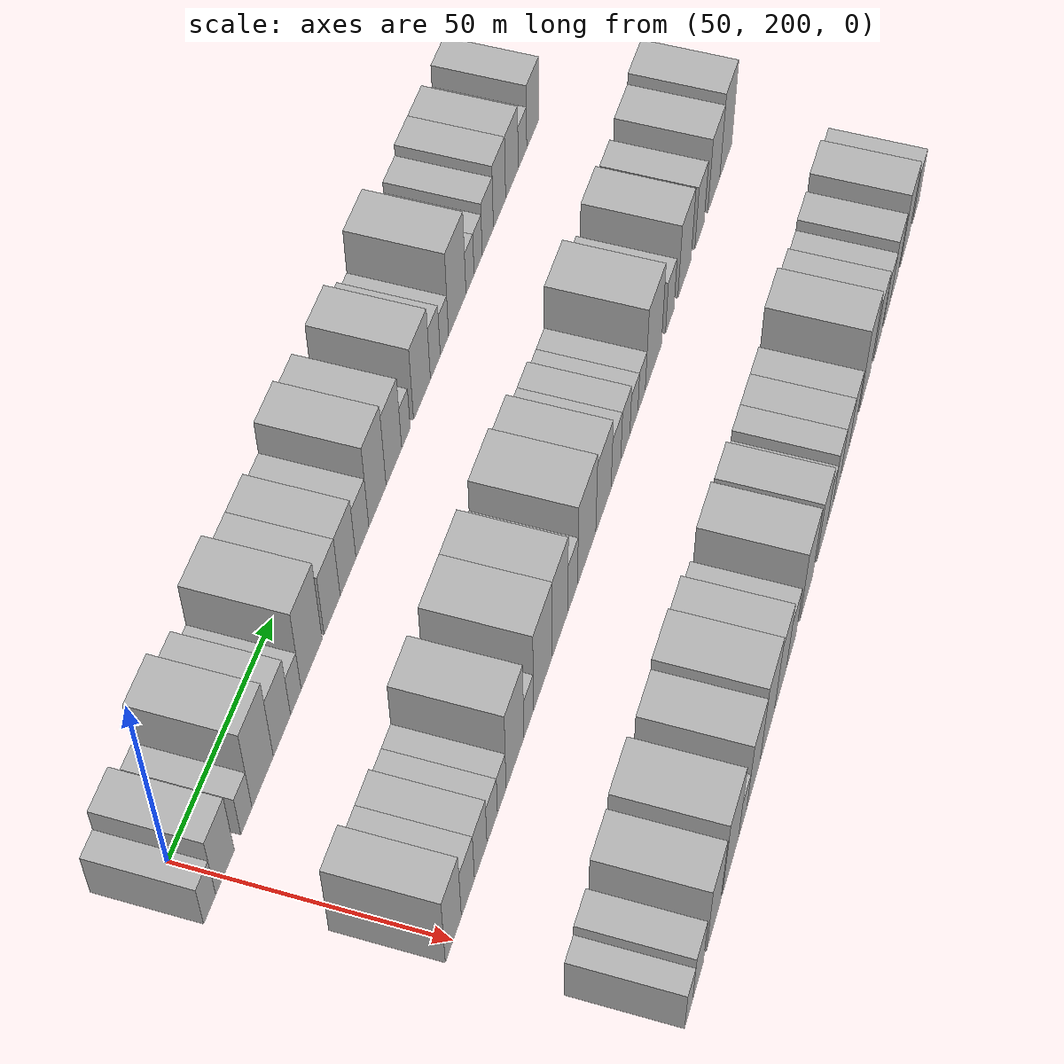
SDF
<sdf version="1.6">
 <world name="default">
  <model name="building_67">
   <static>1</static>
   <pose>50.0000 193.8219 0 0.000000 0.000000 0.000000</pose>
   <link name="link">
    <pose>0 0 6.00 0 0 0</pose>
    <collision name="collision"><geometry><box><size>20.0000 5.4691 12.0000</size></box></geometry></collision>
    <visual name="visual">
     <cast_shadows>0</cast_shadows>
     <geometry><box><size>20.0000 5.4691 12.0000</size></box></geometry>
     <material>
      <script>
       <uri>model://HANNAS_wall/materials/scripts</uri>
       <uri>model://HANNAS_wall/materials/textures</uri>
       <name>vrc/HANNAS_wall</name>
      </script>
     </material>
    </visual>
   </link>
  </model>
  <model name="building_68">
   <static>1</static>
   <pose>50.0000 200.8440 0 0.000000 0.000000 0.000000</pose>
   <link name="link">
    <pose>0 0 9.00 0 0 0</pose>
    <collision name="collision"><geometry><box><size>20.0000 8.5750 18.0000</size></box></geometry></collision>
    <visual name="visual">
     <cast_shadows>0</cast_shadows>
     <geometry><box><size>20.0000 8.5750 18.0000</size></box></geometry>
     <material>
      <script>
       <uri>model://HANNAS_wall/materials/scripts</uri>
       <uri>model://HANNAS_wall/materials/textures</uri>
       <name>vrc/HANNAS_wall</name>
      </script>
     </material>
    </visual>
   </link>
  </model>
  <model name="building_69">
   <static>1</static>
   <pose>50.0000 210.7933 0 0.000000 0.000000 0.000000</pose>
   <link name="link">
    <pose>0 0 6.00 0 0 0</pose>
    <collision name="collision"><geometry><box><size>20.0000 5.3235 12.0000</size></box></geometry></collision>
    <visual name="visual">
     <cast_shadows>0</cast_shadows>
     <geometry><box><size>20.0000 5.3235 12.0000</size></box></geometry>
     <material>
      <script>
       <uri>model://HANNAS_wall/materials/scripts</uri>
       <uri>model://HANNAS_wall/materials/textures</uri>
       <name>vrc/HANNAS_wall</name>
      </script>
     </material>
    </visual>
   </link>
  </model>
  <model name="building_70">
   <static>1</static>
   <pose>50.0000 218.5994 0 0.000000 0.000000 0.000000</pose>
   <link name="link">
    <pose>0 0 12.00 0 0 0</pose>
    <collision name="collision"><geometry><box><size>20.0000 10.2888 24.0000</size></box></geometry></collision>
    <visual name="visual">
     <cast_shadows>0</cast_shadows>
     <geometry><box><size>20.0000 10.2888 24.0000</size></box></geometry>
     <material>
      <script>
       <uri>model://HANNAS_wall/materials/scripts</uri>
       <uri>model://HANNAS_wall/materials/textures</uri>
       <name>vrc/HANNAS_wall</name>
      </script>
     </material>
    </visual>
   </link>
  </model>
  <model name="building_71">
   <static>1</static>
   <pose>50.0000 228.0188 0 0.000000 0.000000 0.000000</pose>
   <link name="link">
    <pose>0 0 9.00 0 0 0</pose>
    <collision name="collision"><geometry><box><size>20.0000 8.5498 18.0000</size></box></geometry></collision>
    <visual name="visual">
     <cast_shadows>0</cast_shadows>
     <geometry><box><size>20.0000 8.5498 18.0000</size></box></geometry>
     <material>
      <script>
       <uri>model://HANNAS_wall/materials/scripts</uri>
       <uri>model://HANNAS_wall/materials/textures</uri>
       <name>vrc/HANNAS_wall</name>
      </script>
     </material>
    </visual>
   </link>
  </model>
  <model name="building_72">
   <static>1</static>
   <pose>50.0000 234.9757 0 0.000000 0.000000 0.000000</pose>
   <link name="link">
    <pose>0 0 6.00 0 0 0</pose>
    <collision name="collision"><geometry><box><size>20.0000 5.3641 12.0000</size></box></geometry></collision>
    <visual name="visual">
     <cast_shadows>0</cast_shadows>
     <geometry><box><size>20.0000 5.3641 12.0000</size></box></geometry>
     <material>
      <script>
       <uri>model://HANNAS_wall/materials/scripts</uri>
       <uri>model://HANNAS_wall/materials/textures</uri>
       <name>vrc/HANNAS_wall</name>
      </script>
     </material>
    </visual>
   </link>
  </model>
  <model name="building_73">
   <static>1</static>
   <pose>50.0000 243.0597 0 0.000000 0.000000 0.000000</pose>
   <link name="link">
    <pose>0 0 12.00 0 0 0</pose>
    <collision name="collision"><geometry><box><size>20.0000 10.8039 24.0000</size></box></geometry></collision>
    <visual name="visual">
     <cast_shadows>0</cast_shadows>
     <geometry><box><size>20.0000 10.8039 24.0000</size></box></geometry>
     <material>
      <script>
       <uri>model://HANNAS_wall/materials/scripts</uri>
       <uri>model://HANNAS_wall/materials/textures</uri>
       <name>vrc/HANNAS_wall</name>
      </script>
     </material>
    </visual>
   </link>
  </model>
  <model name="building_74">
   <static>1</static>
   <pose>50.0000 253.7331 0 0.000000 0.000000 0.000000</pose>
   <link name="link">
    <pose>0 0 9.00 0 0 0</pose>
    <collision name="collision"><geometry><box><size>20.0000 8.5429 18.0000</size></box></geometry></collision>
    <visual name="visual">
     <cast_shadows>0</cast_shadows>
     <geometry><box><size>20.0000 8.5429 18.0000</size></box></geometry>
     <material>
      <script>
       <uri>model://HANNAS_wall/materials/scripts</uri>
       <uri>model://HANNAS_wall/materials/textures</uri>
       <name>vrc/HANNAS_wall</name>
      </script>
     </material>
    </visual>
   </link>
  </model>
  <model name="building_75">
   <static>1</static>
   <pose>50.0000 262.2793 0 0.000000 0.000000 0.000000</pose>
   <link name="link">
    <pose>0 0 9.00 0 0 0</pose>
    <collision name="collision"><geometry><box><size>20.0000 8.5495 18.0000</size></box></geometry></collision>
    <visual name="visual">
     <cast_shadows>0</cast_shadows>
     <geometry><box><size>20.0000 8.5495 18.0000</size></box></geometry>
     <material>
      <script>
       <uri>model://HANNAS_wall/materials/scripts</uri>
       <uri>model://HANNAS_wall/materials/textures</uri>
       <name>vrc/HANNAS_wall</name>
      </script>
     </material>
    </visual>
   </link>
  </model>
  <model name="building_76">
   <static>1</static>
   <pose>50.0000 270.1269 0 0.000000 0.000000 0.000000</pose>
   <link name="link">
    <pose>0 0 7.50 0 0 0</pose>
    <collision name="collision"><geometry><box><size>20.0000 7.1458 15.0000</size></box></geometry></collision>
    <visual name="visual">
     <cast_shadows>0</cast_shadows>
     <geometry><box><size>20.0000 7.1458 15.0000</size></box></geometry>
     <material>
      <script>
       <uri>model://HANNAS_wall/materials/scripts</uri>
       <uri>model://HANNAS_wall/materials/textures</uri>
       <name>vrc/HANNAS_wall</name>
      </script>
     </material>
    </visual>
   </link>
  </model>
  <model name="building_77">
   <static>1</static>
   <pose>50.0000 278.5636 0 0.000000 0.000000 0.000000</pose>
   <link name="link">
    <pose>0 0 12.00 0 0 0</pose>
    <collision name="collision"><geometry><box><size>20.0000 9.7276 24.0000</size></box></geometry></collision>
    <visual name="visual">
     <cast_shadows>0</cast_shadows>
     <geometry><box><size>20.0000 9.7276 24.0000</size></box></geometry>
     <material>
      <script>
       <uri>model://HANNAS_wall/materials/scripts</uri>
       <uri>model://HANNAS_wall/materials/textures</uri>
       <name>vrc/HANNAS_wall</name>
      </script>
     </material>
    </visual>
   </link>
  </model>
  <model name="building_78">
   <static>1</static>
   <pose>50.0000 287.9281 0 0.000000 0.000000 0.000000</pose>
   <link name="link">
    <pose>0 0 10.50 0 0 0</pose>
    <collision name="collision"><geometry><box><size>20.0000 9.0013 21.0000</size></box></geometry></collision>
    <visual name="visual">
     <cast_shadows>0</cast_shadows>
     <geometry><box><size>20.0000 9.0013 21.0000</size></box></geometry>
     <material>
      <script>
       <uri>model://HANNAS_wall/materials/scripts</uri>
       <uri>model://HANNAS_wall/materials/textures</uri>
       <name>vrc/HANNAS_wall</name>
      </script>
     </material>
    </visual>
   </link>
  </model>
  <model name="building_79">
   <static>1</static>
   <pose>50.0000 294.9250 0 0.000000 0.000000 0.000000</pose>
   <link name="link">
    <pose>0 0 6.00 0 0 0</pose>
    <collision name="collision"><geometry><box><size>20.0000 4.9925 12.0000</size></box></geometry></collision>
    <visual name="visual">
     <cast_shadows>0</cast_shadows>
     <geometry><box><size>20.0000 4.9925 12.0000</size></box></geometry>
     <material>
      <script>
       <uri>model://HANNAS_wall/materials/scripts</uri>
       <uri>model://HANNAS_wall/materials/textures</uri>
       <name>vrc/HANNAS_wall</name>
      </script>
     </material>
    </visual>
   </link>
  </model>
  <model name="building_80">
   <static>1</static>
   <pose>50.0000 304.4848 0 0.000000 0.000000 0.000000</pose>
   <link name="link">
    <pose>0 0 10.50 0 0 0</pose>
    <collision name="collision"><geometry><box><size>20.0000 10.1271 21.0000</size></box></geometry></collision>
    <visual name="visual">
     <cast_shadows>0</cast_shadows>
     <geometry><box><size>20.0000 10.1271 21.0000</size></box></geometry>
     <material>
      <script>
       <uri>model://HANNAS_wall/materials/scripts</uri>
       <uri>model://HANNAS_wall/materials/textures</uri>
       <name>vrc/HANNAS_wall</name>
      </script>
     </material>
    </visual>
   </link>
  </model>
  <model name="building_81">
   <static>1</static>
   <pose>50.0000 312.5712 0 0.000000 0.000000 0.000000</pose>
   <link name="link">
    <pose>0 0 7.50 0 0 0</pose>
    <collision name="collision"><geometry><box><size>20.0000 6.0456 15.0000</size></box></geometry></collision>
    <visual name="visual">
     <cast_shadows>0</cast_shadows>
     <geometry><box><size>20.0000 6.0456 15.0000</size></box></geometry>
     <material>
      <script>
       <uri>model://HANNAS_wall/materials/scripts</uri>
       <uri>model://HANNAS_wall/materials/textures</uri>
       <name>vrc/HANNAS_wall</name>
      </script>
     </material>
    </visual>
   </link>
  </model>
  <model name="building_82">
   <static>1</static>
   <pose>50.0000 318.1737 0 0.000000 0.000000 0.000000</pose>
   <link name="link">
    <pose>0 0 6.00 0 0 0</pose>
    <collision name="collision"><geometry><box><size>20.0000 5.1594 12.0000</size></box></geometry></collision>
    <visual name="visual">
     <cast_shadows>0</cast_shadows>
     <geometry><box><size>20.0000 5.1594 12.0000</size></box></geometry>
     <material>
      <script>
       <uri>model://HANNAS_wall/materials/scripts</uri>
       <uri>model://HANNAS_wall/materials/textures</uri>
       <name>vrc/HANNAS_wall</name>
      </script>
     </material>
    </visual>
   </link>
  </model>
  <model name="building_83">
   <static>1</static>
   <pose>50.0000 326.2664 0 0.000000 0.000000 0.000000</pose>
   <link name="link">
    <pose>0 0 12.00 0 0 0</pose>
    <collision name="collision"><geometry><box><size>20.0000 11.0261 24.0000</size></box></geometry></collision>
    <visual name="visual">
     <cast_shadows>0</cast_shadows>
     <geometry><box><size>20.0000 11.0261 24.0000</size></box></geometry>
     <material>
      <script>
       <uri>model://HANNAS_wall/materials/scripts</uri>
       <uri>model://HANNAS_wall/materials/textures</uri>
       <name>vrc/HANNAS_wall</name>
      </script>
     </material>
    </visual>
   </link>
  </model>
  <model name="building_84">
   <static>1</static>
   <pose>50.0000 334.3921 0 0.000000 0.000000 0.000000</pose>
   <link name="link">
    <pose>0 0 6.00 0 0 0</pose>
    <collision name="collision"><geometry><box><size>20.0000 5.2254 12.0000</size></box></geometry></collision>
    <visual name="visual">
     <cast_shadows>0</cast_shadows>
     <geometry><box><size>20.0000 5.2254 12.0000</size></box></geometry>
     <material>
      <script>
       <uri>model://HANNAS_wall/materials/scripts</uri>
       <uri>model://HANNAS_wall/materials/textures</uri>
       <name>vrc/HANNAS_wall</name>
      </script>
     </material>
    </visual>
   </link>
  </model>
  <model name="building_85">
   <static>1</static>
   <pose>50.0000 339.6624 0 0.000000 0.000000 0.000000</pose>
   <link name="link">
    <pose>0 0 6.00 0 0 0</pose>
    <collision name="collision"><geometry><box><size>20.0000 5.3151 12.0000</size></box></geometry></collision>
    <visual name="visual">
     <cast_shadows>0</cast_shadows>
     <geometry><box><size>20.0000 5.3151 12.0000</size></box></geometry>
     <material>
      <script>
       <uri>model://HANNAS_wall/materials/scripts</uri>
       <uri>model://HANNAS_wall/materials/textures</uri>
       <name>vrc/HANNAS_wall</name>
      </script>
     </material>
    </visual>
   </link>
  </model>
  <model name="building_86">
   <static>1</static>
   <pose>50.0000 346.0341 0 0.000000 0.000000 0.000000</pose>
   <link name="link">
    <pose>0 0 7.50 0 0 0</pose>
    <collision name="collision"><geometry><box><size>20.0000 7.4283 15.0000</size></box></geometry></collision>
    <visual name="visual">
     <cast_shadows>0</cast_shadows>
     <geometry><box><size>20.0000 7.4283 15.0000</size></box></geometry>
     <material>
      <script>
       <uri>model://HANNAS_wall/materials/scripts</uri>
       <uri>model://HANNAS_wall/materials/textures</uri>
       <name>vrc/HANNAS_wall</name>
      </script>
     </material>
    </visual>
   </link>
  </model>
  <model name="building_87">
   <static>1</static>
   <pose>50.0000 353.8838 0 0.000000 0.000000 0.000000</pose>
   <link name="link">
    <pose>0 0 9.00 0 0 0</pose>
    <collision name="collision"><geometry><box><size>20.0000 8.2711 18.0000</size></box></geometry></collision>
    <visual name="visual">
     <cast_shadows>0</cast_shadows>
     <geometry><box><size>20.0000 8.2711 18.0000</size></box></geometry>
     <material>
      <script>
       <uri>model://HANNAS_wall/materials/scripts</uri>
       <uri>model://HANNAS_wall/materials/textures</uri>
       <name>vrc/HANNAS_wall</name>
      </script>
     </material>
    </visual>
   </link>
  </model>
  <model name="building_88">
   <static>1</static>
   <pose>50.0000 362.3685 0 0.000000 0.000000 0.000000</pose>
   <link name="link">
    <pose>0 0 9.00 0 0 0</pose>
    <collision name="collision"><geometry><box><size>20.0000 8.6984 18.0000</size></box></geometry></collision>
    <visual name="visual">
     <cast_shadows>0</cast_shadows>
     <geometry><box><size>20.0000 8.6984 18.0000</size></box></geometry>
     <material>
      <script>
       <uri>model://HANNAS_wall/materials/scripts</uri>
       <uri>model://HANNAS_wall/materials/textures</uri>
       <name>vrc/HANNAS_wall</name>
      </script>
     </material>
    </visual>
   </link>
  </model>
  <model name="building_89">
   <static>1</static>
   <pose>50.0000 369.6796 0 0.000000 0.000000 0.000000</pose>
   <link name="link">
    <pose>0 0 6.00 0 0 0</pose>
    <collision name="collision"><geometry><box><size>20.0000 5.9237 12.0000</size></box></geometry></collision>
    <visual name="visual">
     <cast_shadows>0</cast_shadows>
     <geometry><box><size>20.0000 5.9237 12.0000</size></box></geometry>
     <material>
      <script>
       <uri>model://HANNAS_wall/materials/scripts</uri>
       <uri>model://HANNAS_wall/materials/textures</uri>
       <name>vrc/HANNAS_wall</name>
      </script>
     </material>
    </visual>
   </link>
  </model>
  <model name="building_90">
   <static>1</static>
   <pose>50.0000 376.9354 0 0.000000 0.000000 0.000000</pose>
   <link name="link">
    <pose>0 0 9.00 0 0 0</pose>
    <collision name="collision"><geometry><box><size>20.0000 8.5879 18.0000</size></box></geometry></collision>
    <visual name="visual">
     <cast_shadows>0</cast_shadows>
     <geometry><box><size>20.0000 8.5879 18.0000</size></box></geometry>
     <material>
      <script>
       <uri>model://HANNAS_wall/materials/scripts</uri>
       <uri>model://HANNAS_wall/materials/textures</uri>
       <name>vrc/HANNAS_wall</name>
      </script>
     </material>
    </visual>
   </link>
  </model>
  <model name="building_163">
   <static>1</static>
   <pose>90.0000 200.1441 0 0.000000 0.000000 0.000000</pose>
   <link name="link">
    <pose>0 0 10.50 0 0 0</pose>
    <collision name="collision"><geometry><box><size>20.0000 8.4738 21.0000</size></box></geometry></collision>
    <visual name="visual">
     <cast_shadows>0</cast_shadows>
     <geometry><box><size>20.0000 8.4738 21.0000</size></box></geometry>
     <material>
      <script>
       <uri>model://HANNAS_wall/materials/scripts</uri>
       <uri>model://HANNAS_wall/materials/textures</uri>
       <name>vrc/HANNAS_wall</name>
      </script>
     </material>
    </visual>
   </link>
  </model>
  <model name="building_164">
   <static>1</static>
   <pose>90.0000 207.9223 0 0.000000 0.000000 0.000000</pose>
   <link name="link">
    <pose>0 0 7.50 0 0 0</pose>
    <collision name="collision"><geometry><box><size>20.0000 7.0825 15.0000</size></box></geometry></collision>
    <visual name="visual">
     <cast_shadows>0</cast_shadows>
     <geometry><box><size>20.0000 7.0825 15.0000</size></box></geometry>
     <material>
      <script>
       <uri>model://HANNAS_wall/materials/scripts</uri>
       <uri>model://HANNAS_wall/materials/textures</uri>
       <name>vrc/HANNAS_wall</name>
      </script>
     </material>
    </visual>
   </link>
  </model>
  <model name="building_165">
   <static>1</static>
   <pose>90.0000 214.9067 0 0.000000 0.000000 0.000000</pose>
   <link name="link">
    <pose>0 0 7.50 0 0 0</pose>
    <collision name="collision"><geometry><box><size>20.0000 6.8863 15.0000</size></box></geometry></collision>
    <visual name="visual">
     <cast_shadows>0</cast_shadows>
     <geometry><box><size>20.0000 6.8863 15.0000</size></box></geometry>
     <material>
      <script>
       <uri>model://HANNAS_wall/materials/scripts</uri>
       <uri>model://HANNAS_wall/materials/textures</uri>
       <name>vrc/HANNAS_wall</name>
      </script>
     </material>
    </visual>
   </link>
  </model>
  <model name="building_166">
   <static>1</static>
   <pose>90.0000 221.2962 0 0.000000 0.000000 0.000000</pose>
   <link name="link">
    <pose>0 0 6.00 0 0 0</pose>
    <collision name="collision"><geometry><box><size>20.0000 5.8927 12.0000</size></box></geometry></collision>
    <visual name="visual">
     <cast_shadows>0</cast_shadows>
     <geometry><box><size>20.0000 5.8927 12.0000</size></box></geometry>
     <material>
      <script>
       <uri>model://HANNAS_wall/materials/scripts</uri>
       <uri>model://HANNAS_wall/materials/textures</uri>
       <name>vrc/HANNAS_wall</name>
      </script>
     </material>
    </visual>
   </link>
  </model>
  <model name="building_167">
   <static>1</static>
   <pose>90.0000 226.6902 0 0.000000 0.000000 0.000000</pose>
   <link name="link">
    <pose>0 0 6.00 0 0 0</pose>
    <collision name="collision"><geometry><box><size>20.0000 4.8953 12.0000</size></box></geometry></collision>
    <visual name="visual">
     <cast_shadows>0</cast_shadows>
     <geometry><box><size>20.0000 4.8953 12.0000</size></box></geometry>
     <material>
      <script>
       <uri>model://HANNAS_wall/materials/scripts</uri>
       <uri>model://HANNAS_wall/materials/textures</uri>
       <name>vrc/HANNAS_wall</name>
      </script>
     </material>
    </visual>
   </link>
  </model>
  <model name="building_168">
   <static>1</static>
   <pose>90.0000 234.2733 0 0.000000 0.000000 0.000000</pose>
   <link name="link">
    <pose>0 0 12.00 0 0 0</pose>
    <collision name="collision"><geometry><box><size>20.0000 10.2711 24.0000</size></box></geometry></collision>
    <visual name="visual">
     <cast_shadows>0</cast_shadows>
     <geometry><box><size>20.0000 10.2711 24.0000</size></box></geometry>
     <material>
      <script>
       <uri>model://HANNAS_wall/materials/scripts</uri>
       <uri>model://HANNAS_wall/materials/textures</uri>
       <name>vrc/HANNAS_wall</name>
      </script>
     </material>
    </visual>
   </link>
  </model>
  <model name="building_169">
   <static>1</static>
   <pose>90.0000 242.2615 0 0.000000 0.000000 0.000000</pose>
   <link name="link">
    <pose>0 0 6.00 0 0 0</pose>
    <collision name="collision"><geometry><box><size>20.0000 5.7052 12.0000</size></box></geometry></collision>
    <visual name="visual">
     <cast_shadows>0</cast_shadows>
     <geometry><box><size>20.0000 5.7052 12.0000</size></box></geometry>
     <material>
      <script>
       <uri>model://HANNAS_wall/materials/scripts</uri>
       <uri>model://HANNAS_wall/materials/textures</uri>
       <name>vrc/HANNAS_wall</name>
      </script>
     </material>
    </visual>
   </link>
  </model>
  <model name="building_170">
   <static>1</static>
   <pose>90.0000 250.7842 0 0.000000 0.000000 0.000000</pose>
   <link name="link">
    <pose>0 0 12.00 0 0 0</pose>
    <collision name="collision"><geometry><box><size>20.0000 11.3401 24.0000</size></box></geometry></collision>
    <visual name="visual">
     <cast_shadows>0</cast_shadows>
     <geometry><box><size>20.0000 11.3401 24.0000</size></box></geometry>
     <material>
      <script>
       <uri>model://HANNAS_wall/materials/scripts</uri>
       <uri>model://HANNAS_wall/materials/textures</uri>
       <name>vrc/HANNAS_wall</name>
      </script>
     </material>
    </visual>
   </link>
  </model>
  <model name="building_171">
   <static>1</static>
   <pose>90.0000 261.2702 0 0.000000 0.000000 0.000000</pose>
   <link name="link">
    <pose>0 0 12.00 0 0 0</pose>
    <collision name="collision"><geometry><box><size>20.0000 9.6320 24.0000</size></box></geometry></collision>
    <visual name="visual">
     <cast_shadows>0</cast_shadows>
     <geometry><box><size>20.0000 9.6320 24.0000</size></box></geometry>
     <material>
      <script>
       <uri>model://HANNAS_wall/materials/scripts</uri>
       <uri>model://HANNAS_wall/materials/textures</uri>
       <name>vrc/HANNAS_wall</name>
      </script>
     </material>
    </visual>
   </link>
  </model>
  <model name="building_172">
   <static>1</static>
   <pose>90.0000 269.2439 0 0.000000 0.000000 0.000000</pose>
   <link name="link">
    <pose>0 0 7.50 0 0 0</pose>
    <collision name="collision"><geometry><box><size>20.0000 6.3154 15.0000</size></box></geometry></collision>
    <visual name="visual">
     <cast_shadows>0</cast_shadows>
     <geometry><box><size>20.0000 6.3154 15.0000</size></box></geometry>
     <material>
      <script>
       <uri>model://HANNAS_wall/materials/scripts</uri>
       <uri>model://HANNAS_wall/materials/textures</uri>
       <name>vrc/HANNAS_wall</name>
      </script>
     </material>
    </visual>
   </link>
  </model>
  <model name="building_173">
   <static>1</static>
   <pose>90.0000 278.3806 0 0.000000 0.000000 0.000000</pose>
   <link name="link">
    <pose>0 0 12.00 0 0 0</pose>
    <collision name="collision"><geometry><box><size>20.0000 11.9581 24.0000</size></box></geometry></collision>
    <visual name="visual">
     <cast_shadows>0</cast_shadows>
     <geometry><box><size>20.0000 11.9581 24.0000</size></box></geometry>
     <material>
      <script>
       <uri>model://HANNAS_wall/materials/scripts</uri>
       <uri>model://HANNAS_wall/materials/textures</uri>
       <name>vrc/HANNAS_wall</name>
      </script>
     </material>
    </visual>
   </link>
  </model>
  <model name="building_174">
   <static>1</static>
   <pose>90.0000 289.4900 0 0.000000 0.000000 0.000000</pose>
   <link name="link">
    <pose>0 0 10.50 0 0 0</pose>
    <collision name="collision"><geometry><box><size>20.0000 10.2608 21.0000</size></box></geometry></collision>
    <visual name="visual">
     <cast_shadows>0</cast_shadows>
     <geometry><box><size>20.0000 10.2608 21.0000</size></box></geometry>
     <material>
      <script>
       <uri>model://HANNAS_wall/materials/scripts</uri>
       <uri>model://HANNAS_wall/materials/textures</uri>
       <name>vrc/HANNAS_wall</name>
      </script>
     </material>
    </visual>
   </link>
  </model>
  <model name="building_175">
   <static>1</static>
   <pose>90.0000 297.9205 0 0.000000 0.000000 0.000000</pose>
   <link name="link">
    <pose>0 0 7.50 0 0 0</pose>
    <collision name="collision"><geometry><box><size>20.0000 6.6002 15.0000</size></box></geometry></collision>
    <visual name="visual">
     <cast_shadows>0</cast_shadows>
     <geometry><box><size>20.0000 6.6002 15.0000</size></box></geometry>
     <material>
      <script>
       <uri>model://HANNAS_wall/materials/scripts</uri>
       <uri>model://HANNAS_wall/materials/textures</uri>
       <name>vrc/HANNAS_wall</name>
      </script>
     </material>
    </visual>
   </link>
  </model>
  <model name="building_176">
   <static>1</static>
   <pose>90.0000 304.3906 0 0.000000 0.000000 0.000000</pose>
   <link name="link">
    <pose>0 0 7.50 0 0 0</pose>
    <collision name="collision"><geometry><box><size>20.0000 6.3400 15.0000</size></box></geometry></collision>
    <visual name="visual">
     <cast_shadows>0</cast_shadows>
     <geometry><box><size>20.0000 6.3400 15.0000</size></box></geometry>
     <material>
      <script>
       <uri>model://HANNAS_wall/materials/scripts</uri>
       <uri>model://HANNAS_wall/materials/textures</uri>
       <name>vrc/HANNAS_wall</name>
      </script>
     </material>
    </visual>
   </link>
  </model>
  <model name="building_177">
   <static>1</static>
   <pose>90.0000 310.3826 0 0.000000 0.000000 0.000000</pose>
   <link name="link">
    <pose>0 0 6.00 0 0 0</pose>
    <collision name="collision"><geometry><box><size>20.0000 5.6441 12.0000</size></box></geometry></collision>
    <visual name="visual">
     <cast_shadows>0</cast_shadows>
     <geometry><box><size>20.0000 5.6441 12.0000</size></box></geometry>
     <material>
      <script>
       <uri>model://HANNAS_wall/materials/scripts</uri>
       <uri>model://HANNAS_wall/materials/textures</uri>
       <name>vrc/HANNAS_wall</name>
      </script>
     </material>
    </visual>
   </link>
  </model>
  <model name="building_178">
   <static>1</static>
   <pose>90.0000 315.8562 0 0.000000 0.000000 0.000000</pose>
   <link name="link">
    <pose>0 0 6.00 0 0 0</pose>
    <collision name="collision"><geometry><box><size>20.0000 5.3030 12.0000</size></box></geometry></collision>
    <visual name="visual">
     <cast_shadows>0</cast_shadows>
     <geometry><box><size>20.0000 5.3030 12.0000</size></box></geometry>
     <material>
      <script>
       <uri>model://HANNAS_wall/materials/scripts</uri>
       <uri>model://HANNAS_wall/materials/textures</uri>
       <name>vrc/HANNAS_wall</name>
      </script>
     </material>
    </visual>
   </link>
  </model>
  <model name="building_179">
   <static>1</static>
   <pose>90.0000 324.4336 0 0.000000 0.000000 0.000000</pose>
   <link name="link">
    <pose>0 0 12.00 0 0 0</pose>
    <collision name="collision"><geometry><box><size>20.0000 11.8517 24.0000</size></box></geometry></collision>
    <visual name="visual">
     <cast_shadows>0</cast_shadows>
     <geometry><box><size>20.0000 11.8517 24.0000</size></box></geometry>
     <material>
      <script>
       <uri>model://HANNAS_wall/materials/scripts</uri>
       <uri>model://HANNAS_wall/materials/textures</uri>
       <name>vrc/HANNAS_wall</name>
      </script>
     </material>
    </visual>
   </link>
  </model>
  <model name="building_180">
   <static>1</static>
   <pose>90.0000 336.5425 0 0.000000 0.000000 0.000000</pose>
   <link name="link">
    <pose>0 0 7.50 0 0 0</pose>
    <collision name="collision"><geometry><box><size>20.0000 6.3661 15.0000</size></box></geometry></collision>
    <visual name="visual">
     <cast_shadows>0</cast_shadows>
     <geometry><box><size>20.0000 6.3661 15.0000</size></box></geometry>
     <material>
      <script>
       <uri>model://HANNAS_wall/materials/scripts</uri>
       <uri>model://HANNAS_wall/materials/textures</uri>
       <name>vrc/HANNAS_wall</name>
      </script>
     </material>
    </visual>
   </link>
  </model>
  <model name="building_181">
   <static>1</static>
   <pose>90.0000 347.7879 0 0.000000 0.000000 0.000000</pose>
   <link name="link">
    <pose>0 0 10.50 0 0 0</pose>
    <collision name="collision"><geometry><box><size>20.0000 10.1249 21.0000</size></box></geometry></collision>
    <visual name="visual">
     <cast_shadows>0</cast_shadows>
     <geometry><box><size>20.0000 10.1249 21.0000</size></box></geometry>
     <material>
      <script>
       <uri>model://HANNAS_wall/materials/scripts</uri>
       <uri>model://HANNAS_wall/materials/textures</uri>
       <name>vrc/HANNAS_wall</name>
      </script>
     </material>
    </visual>
   </link>
  </model>
  <model name="building_182">
   <static>1</static>
   <pose>90.0000 359.4985 0 0.000000 0.000000 0.000000</pose>
   <link name="link">
    <pose>0 0 9.00 0 0 0</pose>
    <collision name="collision"><geometry><box><size>20.0000 7.2963 18.0000</size></box></geometry></collision>
    <visual name="visual">
     <cast_shadows>0</cast_shadows>
     <geometry><box><size>20.0000 7.2963 18.0000</size></box></geometry>
     <material>
      <script>
       <uri>model://HANNAS_wall/materials/scripts</uri>
       <uri>model://HANNAS_wall/materials/textures</uri>
       <name>vrc/HANNAS_wall</name>
      </script>
     </material>
    </visual>
   </link>
  </model>
  <model name="building_183">
   <static>1</static>
   <pose>90.0000 371.0342 0 0.000000 0.000000 0.000000</pose>
   <link name="link">
    <pose>0 0 10.50 0 0 0</pose>
    <collision name="collision"><geometry><box><size>20.0000 9.7750 21.0000</size></box></geometry></collision>
    <visual name="visual">
     <cast_shadows>0</cast_shadows>
     <geometry><box><size>20.0000 9.7750 21.0000</size></box></geometry>
     <material>
      <script>
       <uri>model://HANNAS_wall/materials/scripts</uri>
       <uri>model://HANNAS_wall/materials/textures</uri>
       <name>vrc/HANNAS_wall</name>
      </script>
     </material>
    </visual>
   </link>
  </model>
  <model name="building_184">
   <static>1</static>
   <pose>90.0000 380.8709 0 0.000000 0.000000 0.000000</pose>
   <link name="link">
    <pose>0 0 12.00 0 0 0</pose>
    <collision name="collision"><geometry><box><size>20.0000 9.8983 24.0000</size></box></geometry></collision>
    <visual name="visual">
     <cast_shadows>0</cast_shadows>
     <geometry><box><size>20.0000 9.8983 24.0000</size></box></geometry>
     <material>
      <script>
       <uri>model://HANNAS_wall/materials/scripts</uri>
       <uri>model://HANNAS_wall/materials/textures</uri>
       <name>vrc/HANNAS_wall</name>
      </script>
     </material>
    </visual>
   </link>
  </model>
  <model name="building_247">
   <static>1</static>
   <pose>130.0000 198.5391 0 0.000000 0.000000 0.000000</pose>
   <link name="link">
    <pose>0 0 6.00 0 0 0</pose>
    <collision name="collision"><geometry><box><size>20.0000 5.0285 12.0000</size></box></geometry></collision>
    <visual name="visual">
     <cast_shadows>0</cast_shadows>
     <geometry><box><size>20.0000 5.0285 12.0000</size></box></geometry>
     <material>
      <script>
       <uri>model://HANNAS_wall/materials/scripts</uri>
       <uri>model://HANNAS_wall/materials/textures</uri>
       <name>vrc/HANNAS_wall</name>
      </script>
     </material>
    </visual>
   </link>
  </model>
  <model name="building_248">
   <static>1</static>
   <pose>130.0000 204.4806 0 0.000000 0.000000 0.000000</pose>
   <link name="link">
    <pose>0 0 7.50 0 0 0</pose>
    <collision name="collision"><geometry><box><size>20.0000 6.8544 15.0000</size></box></geometry></collision>
    <visual name="visual">
     <cast_shadows>0</cast_shadows>
     <geometry><box><size>20.0000 6.8544 15.0000</size></box></geometry>
     <material>
      <script>
       <uri>model://HANNAS_wall/materials/scripts</uri>
       <uri>model://HANNAS_wall/materials/textures</uri>
       <name>vrc/HANNAS_wall</name>
      </script>
     </material>
    </visual>
   </link>
  </model>
  <model name="building_249">
   <static>1</static>
   <pose>130.0000 214.6348 0 0.000000 0.000000 0.000000</pose>
   <link name="link">
    <pose>0 0 10.50 0 0 0</pose>
    <collision name="collision"><geometry><box><size>20.0000 9.4539 21.0000</size></box></geometry></collision>
    <visual name="visual">
     <cast_shadows>0</cast_shadows>
     <geometry><box><size>20.0000 9.4539 21.0000</size></box></geometry>
     <material>
      <script>
       <uri>model://HANNAS_wall/materials/scripts</uri>
       <uri>model://HANNAS_wall/materials/textures</uri>
       <name>vrc/HANNAS_wall</name>
      </script>
     </material>
    </visual>
   </link>
  </model>
  <model name="building_250">
   <static>1</static>
   <pose>130.0000 225.8465 0 0.000000 0.000000 0.000000</pose>
   <link name="link">
    <pose>0 0 12.00 0 0 0</pose>
    <collision name="collision"><geometry><box><size>20.0000 10.9697 24.0000</size></box></geometry></collision>
    <visual name="visual">
     <cast_shadows>0</cast_shadows>
     <geometry><box><size>20.0000 10.9697 24.0000</size></box></geometry>
     <material>
      <script>
       <uri>model://HANNAS_wall/materials/scripts</uri>
       <uri>model://HANNAS_wall/materials/textures</uri>
       <name>vrc/HANNAS_wall</name>
      </script>
     </material>
    </visual>
   </link>
  </model>
  <model name="building_251">
   <static>1</static>
   <pose>130.0000 234.1889 0 0.000000 0.000000 0.000000</pose>
   <link name="link">
    <pose>0 0 6.00 0 0 0</pose>
    <collision name="collision"><geometry><box><size>20.0000 5.7151 12.0000</size></box></geometry></collision>
    <visual name="visual">
     <cast_shadows>0</cast_shadows>
     <geometry><box><size>20.0000 5.7151 12.0000</size></box></geometry>
     <material>
      <script>
       <uri>model://HANNAS_wall/materials/scripts</uri>
       <uri>model://HANNAS_wall/materials/textures</uri>
       <name>vrc/HANNAS_wall</name>
      </script>
     </material>
    </visual>
   </link>
  </model>
  <model name="building_252">
   <static>1</static>
   <pose>130.0000 241.7749 0 0.000000 0.000000 0.000000</pose>
   <link name="link">
    <pose>0 0 10.50 0 0 0</pose>
    <collision name="collision"><geometry><box><size>20.0000 9.4567 21.0000</size></box></geometry></collision>
    <visual name="visual">
     <cast_shadows>0</cast_shadows>
     <geometry><box><size>20.0000 9.4567 21.0000</size></box></geometry>
     <material>
      <script>
       <uri>model://HANNAS_wall/materials/scripts</uri>
       <uri>model://HANNAS_wall/materials/textures</uri>
       <name>vrc/HANNAS_wall</name>
      </script>
     </material>
    </visual>
   </link>
  </model>
  <model name="building_253">
   <static>1</static>
   <pose>130.0000 251.7209 0 0.000000 0.000000 0.000000</pose>
   <link name="link">
    <pose>0 0 12.00 0 0 0</pose>
    <collision name="collision"><geometry><box><size>20.0000 10.4354 24.0000</size></box></geometry></collision>
    <visual name="visual">
     <cast_shadows>0</cast_shadows>
     <geometry><box><size>20.0000 10.4354 24.0000</size></box></geometry>
     <material>
      <script>
       <uri>model://HANNAS_wall/materials/scripts</uri>
       <uri>model://HANNAS_wall/materials/textures</uri>
       <name>vrc/HANNAS_wall</name>
      </script>
     </material>
    </visual>
   </link>
  </model>
  <model name="building_254">
   <static>1</static>
   <pose>130.0000 261.4227 0 0.000000 0.000000 0.000000</pose>
   <link name="link">
    <pose>0 0 10.50 0 0 0</pose>
    <collision name="collision"><geometry><box><size>20.0000 8.9683 21.0000</size></box></geometry></collision>
    <visual name="visual">
     <cast_shadows>0</cast_shadows>
     <geometry><box><size>20.0000 8.9683 21.0000</size></box></geometry>
     <material>
      <script>
       <uri>model://HANNAS_wall/materials/scripts</uri>
       <uri>model://HANNAS_wall/materials/textures</uri>
       <name>vrc/HANNAS_wall</name>
      </script>
     </material>
    </visual>
   </link>
  </model>
  <model name="building_255">
   <static>1</static>
   <pose>130.0000 269.5776 0 0.000000 0.000000 0.000000</pose>
   <link name="link">
    <pose>0 0 7.50 0 0 0</pose>
    <collision name="collision"><geometry><box><size>20.0000 7.3415 15.0000</size></box></geometry></collision>
    <visual name="visual">
     <cast_shadows>0</cast_shadows>
     <geometry><box><size>20.0000 7.3415 15.0000</size></box></geometry>
     <material>
      <script>
       <uri>model://HANNAS_wall/materials/scripts</uri>
       <uri>model://HANNAS_wall/materials/textures</uri>
       <name>vrc/HANNAS_wall</name>
      </script>
     </material>
    </visual>
   </link>
  </model>
  <model name="building_256">
   <static>1</static>
   <pose>130.0000 281.3634 0 0.000000 0.000000 0.000000</pose>
   <link name="link">
    <pose>0 0 10.50 0 0 0</pose>
    <collision name="collision"><geometry><box><size>20.0000 10.2299 21.0000</size></box></geometry></collision>
    <visual name="visual">
     <cast_shadows>0</cast_shadows>
     <geometry><box><size>20.0000 10.2299 21.0000</size></box></geometry>
     <material>
      <script>
       <uri>model://HANNAS_wall/materials/scripts</uri>
       <uri>model://HANNAS_wall/materials/textures</uri>
       <name>vrc/HANNAS_wall</name>
      </script>
     </material>
    </visual>
   </link>
  </model>
  <model name="building_257">
   <static>1</static>
   <pose>130.0000 293.7027 0 0.000000 0.000000 0.000000</pose>
   <link name="link">
    <pose>0 0 9.00 0 0 0</pose>
    <collision name="collision"><geometry><box><size>20.0000 8.4486 18.0000</size></box></geometry></collision>
    <visual name="visual">
     <cast_shadows>0</cast_shadows>
     <geometry><box><size>20.0000 8.4486 18.0000</size></box></geometry>
     <material>
      <script>
       <uri>model://HANNAS_wall/materials/scripts</uri>
       <uri>model://HANNAS_wall/materials/textures</uri>
       <name>vrc/HANNAS_wall</name>
      </script>
     </material>
    </visual>
   </link>
  </model>
  <model name="building_258">
   <static>1</static>
   <pose>130.0000 300.4209 0 0.000000 0.000000 0.000000</pose>
   <link name="link">
    <pose>0 0 6.00 0 0 0</pose>
    <collision name="collision"><geometry><box><size>20.0000 4.9879 12.0000</size></box></geometry></collision>
    <visual name="visual">
     <cast_shadows>0</cast_shadows>
     <geometry><box><size>20.0000 4.9879 12.0000</size></box></geometry>
     <material>
      <script>
       <uri>model://HANNAS_wall/materials/scripts</uri>
       <uri>model://HANNAS_wall/materials/textures</uri>
       <name>vrc/HANNAS_wall</name>
      </script>
     </material>
    </visual>
   </link>
  </model>
  <model name="building_259">
   <static>1</static>
   <pose>130.0000 306.0264 0 0.000000 0.000000 0.000000</pose>
   <link name="link">
    <pose>0 0 7.50 0 0 0</pose>
    <collision name="collision"><geometry><box><size>20.0000 6.2232 15.0000</size></box></geometry></collision>
    <visual name="visual">
     <cast_shadows>0</cast_shadows>
     <geometry><box><size>20.0000 6.2232 15.0000</size></box></geometry>
     <material>
      <script>
       <uri>model://HANNAS_wall/materials/scripts</uri>
       <uri>model://HANNAS_wall/materials/textures</uri>
       <name>vrc/HANNAS_wall</name>
      </script>
     </material>
    </visual>
   </link>
  </model>
  <model name="building_260">
   <static>1</static>
   <pose>130.0000 312.8603 0 0.000000 0.000000 0.000000</pose>
   <link name="link">
    <pose>0 0 7.50 0 0 0</pose>
    <collision name="collision"><geometry><box><size>20.0000 7.4446 15.0000</size></box></geometry></collision>
    <visual name="visual">
     <cast_shadows>0</cast_shadows>
     <geometry><box><size>20.0000 7.4446 15.0000</size></box></geometry>
     <material>
      <script>
       <uri>model://HANNAS_wall/materials/scripts</uri>
       <uri>model://HANNAS_wall/materials/textures</uri>
       <name>vrc/HANNAS_wall</name>
      </script>
     </material>
    </visual>
   </link>
  </model>
  <model name="building_261">
   <static>1</static>
   <pose>130.0000 319.8840 0 0.000000 0.000000 0.000000</pose>
   <link name="link">
    <pose>0 0 7.50 0 0 0</pose>
    <collision name="collision"><geometry><box><size>20.0000 6.6027 15.0000</size></box></geometry></collision>
    <visual name="visual">
     <cast_shadows>0</cast_shadows>
     <geometry><box><size>20.0000 6.6027 15.0000</size></box></geometry>
     <material>
      <script>
       <uri>model://HANNAS_wall/materials/scripts</uri>
       <uri>model://HANNAS_wall/materials/textures</uri>
       <name>vrc/HANNAS_wall</name>
      </script>
     </material>
    </visual>
   </link>
  </model>
  <model name="building_262">
   <static>1</static>
   <pose>130.0000 330.2009 0 0.000000 0.000000 0.000000</pose>
   <link name="link">
    <pose>0 0 12.00 0 0 0</pose>
    <collision name="collision"><geometry><box><size>20.0000 10.0311 24.0000</size></box></geometry></collision>
    <visual name="visual">
     <cast_shadows>0</cast_shadows>
     <geometry><box><size>20.0000 10.0311 24.0000</size></box></geometry>
     <material>
      <script>
       <uri>model://HANNAS_wall/materials/scripts</uri>
       <uri>model://HANNAS_wall/materials/textures</uri>
       <name>vrc/HANNAS_wall</name>
      </script>
     </material>
    </visual>
   </link>
  </model>
  <model name="building_263">
   <static>1</static>
   <pose>130.0000 341.9157 0 0.000000 0.000000 0.000000</pose>
   <link name="link">
    <pose>0 0 9.00 0 0 0</pose>
    <collision name="collision"><geometry><box><size>20.0000 7.3985 18.0000</size></box></geometry></collision>
    <visual name="visual">
     <cast_shadows>0</cast_shadows>
     <geometry><box><size>20.0000 7.3985 18.0000</size></box></geometry>
     <material>
      <script>
       <uri>model://HANNAS_wall/materials/scripts</uri>
       <uri>model://HANNAS_wall/materials/textures</uri>
       <name>vrc/HANNAS_wall</name>
      </script>
     </material>
    </visual>
   </link>
  </model>
  <model name="building_264">
   <static>1</static>
   <pose>130.0000 349.9115 0 0.000000 0.000000 0.000000</pose>
   <link name="link">
    <pose>0 0 7.50 0 0 0</pose>
    <collision name="collision"><geometry><box><size>20.0000 6.5929 15.0000</size></box></geometry></collision>
    <visual name="visual">
     <cast_shadows>0</cast_shadows>
     <geometry><box><size>20.0000 6.5929 15.0000</size></box></geometry>
     <material>
      <script>
       <uri>model://HANNAS_wall/materials/scripts</uri>
       <uri>model://HANNAS_wall/materials/textures</uri>
       <name>vrc/HANNAS_wall</name>
      </script>
     </material>
    </visual>
   </link>
  </model>
  <model name="building_265">
   <static>1</static>
   <pose>130.0000 357.0120 0 0.000000 0.000000 0.000000</pose>
   <link name="link">
    <pose>0 0 9.00 0 0 0</pose>
    <collision name="collision"><geometry><box><size>20.0000 7.6081 18.0000</size></box></geometry></collision>
    <visual name="visual">
     <cast_shadows>0</cast_shadows>
     <geometry><box><size>20.0000 7.6081 18.0000</size></box></geometry>
     <material>
      <script>
       <uri>model://HANNAS_wall/materials/scripts</uri>
       <uri>model://HANNAS_wall/materials/textures</uri>
       <name>vrc/HANNAS_wall</name>
      </script>
     </material>
    </visual>
   </link>
  </model>
  <model name="building_266">
   <static>1</static>
   <pose>130.0000 367.4393 0 0.000000 0.000000 0.000000</pose>
   <link name="link">
    <pose>0 0 10.50 0 0 0</pose>
    <collision name="collision"><geometry><box><size>20.0000 9.2465 21.0000</size></box></geometry></collision>
    <visual name="visual">
     <cast_shadows>0</cast_shadows>
     <geometry><box><size>20.0000 9.2465 21.0000</size></box></geometry>
     <material>
      <script>
       <uri>model://HANNAS_wall/materials/scripts</uri>
       <uri>model://HANNAS_wall/materials/textures</uri>
       <name>vrc/HANNAS_wall</name>
      </script>
     </material>
    </visual>
   </link>
  </model>
  <model name="building_267">
   <static>1</static>
   <pose>130.0000 378.2880 0 0.000000 0.000000 0.000000</pose>
   <link name="link">
    <pose>0 0 7.50 0 0 0</pose>
    <collision name="collision"><geometry><box><size>20.0000 6.4509 15.0000</size></box></geometry></collision>
    <visual name="visual">
     <cast_shadows>0</cast_shadows>
     <geometry><box><size>20.0000 6.4509 15.0000</size></box></geometry>
     <material>
      <script>
       <uri>model://HANNAS_wall/materials/scripts</uri>
       <uri>model://HANNAS_wall/materials/textures</uri>
       <name>vrc/HANNAS_wall</name>
      </script>
     </material>
    </visual>
   </link>
  </model>
 </world>
</sdf>
